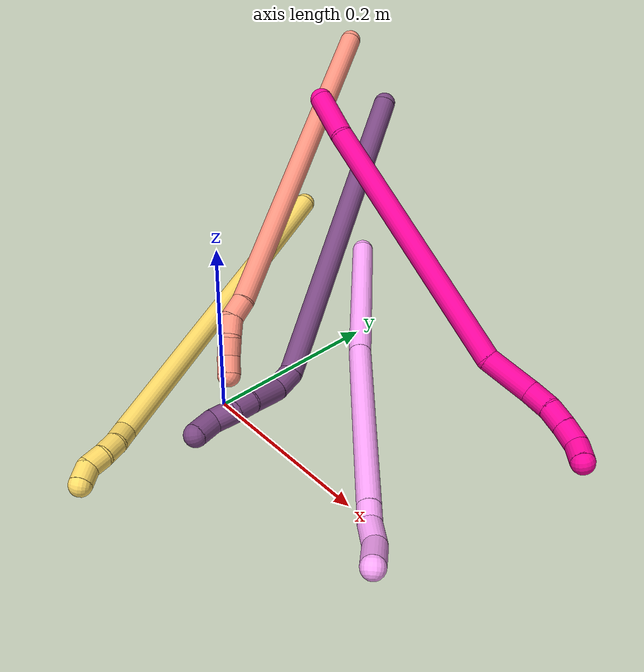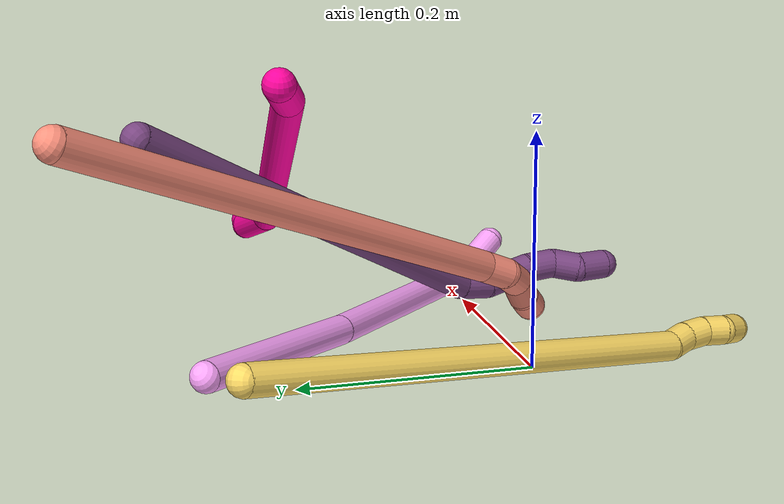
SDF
<sdf version="1.7">
 <world name="default">
  <model name="4">
   <static>0</static>
   <link name="4">
    <collision name="collision-cylinder-e_1_1_4">
     <pose>0.005216 -0.051742 -0.077474 2.55277 0.055925 0.183962</pose>
     <geometry><cylinder><radius>0.0125</radius><length>0.186618</length></cylinder></geometry>
     <surface>
      <friction><ode><mu>1.16</mu><mu2>1.16</mu2><slip1>0</slip1><slip2>0</slip2></ode></friction>
      <contact><ode><kp>1e+06</kp><kd>1</kd><max_vel>0</max_vel><min_depth>0.001</min_depth></ode></contact>
     </surface>
    </collision>
    <visual name="visual-cylinder-e_1_1_4">
     <pose>0.005216 -0.051742 -0.077474 2.55277 0.055925 0.183962</pose>
     <geometry><cylinder><radius>0.0125</radius><length>0.186618</length></cylinder></geometry>
     <material><ambient>1 0.65098 0.996078 1</ambient></material>
    </visual>
    <collision name="collision-cylinder-e_2_4_5">
     <pose>0.023002 -0.166875 -0.244556 2.52589 0.114026 0.355226</pose>
     <geometry><cylinder><radius>0.0125</radius><length>0.220964</length></cylinder></geometry>
     <surface>
      <friction><ode><mu>1.16</mu><mu2>1.16</mu2><slip1>0</slip1><slip2>0</slip2></ode></friction>
      <contact><ode><kp>1e+06</kp><kd>1</kd><max_vel>0</max_vel><min_depth>0.001</min_depth></ode></contact>
     </surface>
    </collision>
    <visual name="visual-cylinder-e_2_4_5">
     <pose>0.023002 -0.166875 -0.244556 2.52589 0.114026 0.355226</pose>
     <geometry><cylinder><radius>0.0125</radius><length>0.220964</length></cylinder></geometry>
     <material><ambient>1 0.65098 0.996078 1</ambient></material>
    </visual>
    <collision name="collision-cylinder-e_3_5_6">
     <pose>0.036766 -0.236284 -0.342882 2.53757 0.112207 0.356713</pose>
     <geometry><cylinder><radius>0.0125</radius><length>0.021318</length></cylinder></geometry>
     <surface>
      <friction><ode><mu>1.16</mu><mu2>1.16</mu2><slip1>0</slip1><slip2>0</slip2></ode></friction>
      <contact><ode><kp>1e+06</kp><kd>1</kd><max_vel>0</max_vel><min_depth>0.001</min_depth></ode></contact>
     </surface>
    </collision>
    <visual name="visual-cylinder-e_3_5_6">
     <pose>0.036766 -0.236284 -0.342882 2.53757 0.112207 0.356713</pose>
     <geometry><cylinder><radius>0.0125</radius><length>0.021318</length></cylinder></geometry>
     <material><ambient>1 0.65098 0.996078 1</ambient></material>
    </visual>
    <collision name="collision-cylinder-e_4_6_7">
     <pose>0.041237 -0.25345 -0.362059 2.32424 0.211225 0.480132</pose>
     <geometry><cylinder><radius>0.0125</radius><length>0.031271</length></cylinder></geometry>
     <surface>
      <friction><ode><mu>1.16</mu><mu2>1.16</mu2><slip1>0</slip1><slip2>0</slip2></ode></friction>
      <contact><ode><kp>1e+06</kp><kd>1</kd><max_vel>0</max_vel><min_depth>0.001</min_depth></ode></contact>
     </surface>
    </collision>
    <visual name="visual-cylinder-e_4_6_7">
     <pose>0.041237 -0.25345 -0.362059 2.32424 0.211225 0.480132</pose>
     <geometry><cylinder><radius>0.0125</radius><length>0.031271</length></cylinder></geometry>
     <material><ambient>1 0.65098 0.996078 1</ambient></material>
    </visual>
    <collision name="collision-cylinder-e_5_7_2">
     <pose>0.044659 -0.281973 -0.382252 2.08149 0.007193 0.012275</pose>
     <geometry><cylinder><radius>0.0125</radius><length>0.039829</length></cylinder></geometry>
     <surface>
      <friction><ode><mu>1.16</mu><mu2>1.16</mu2><slip1>0</slip1><slip2>0</slip2></ode></friction>
      <contact><ode><kp>1e+06</kp><kd>1</kd><max_vel>0</max_vel><min_depth>0.001</min_depth></ode></contact>
     </surface>
    </collision>
    <visual name="visual-cylinder-e_5_7_2">
     <pose>0.044659 -0.281973 -0.382252 2.08149 0.007193 0.012275</pose>
     <geometry><cylinder><radius>0.0125</radius><length>0.039829</length></cylinder></geometry>
     <material><ambient>1 0.65098 0.996078 1</ambient></material>
    </visual>
    <collision name="collision-sphere-2">
     <pose>0.044802 -0.299346 -0.391986 0 -0 0</pose>
     <geometry><sphere><radius>0.0125</radius></sphere></geometry>
     <surface>
      <friction><ode><mu>1.16</mu><mu2>1.16</mu2><slip1>0</slip1><slip2>0</slip2></ode></friction>
      <contact><ode><kp>1e+06</kp><kd>1</kd><max_vel>0</max_vel><min_depth>0.001</min_depth></ode></contact>
     </surface>
    </collision>
    <visual name="visual-sphere-2">
     <pose>0.044802 -0.299346 -0.391986 0 -0 0</pose>
     <geometry><sphere><radius>0.0125</radius></sphere></geometry>
     <material><ambient>1 0.65098 0.996078 1</ambient></material>
    </visual>
    <collision name="collision-sphere-7">
     <pose>0.044516 -0.264599 -0.372519 0 -0 0</pose>
     <geometry><sphere><radius>0.0125</radius></sphere></geometry>
     <surface>
      <friction><ode><mu>1.16</mu><mu2>1.16</mu2><slip1>0</slip1><slip2>0</slip2></ode></friction>
      <contact><ode><kp>1e+06</kp><kd>1</kd><max_vel>0</max_vel><min_depth>0.001</min_depth></ode></contact>
     </surface>
    </collision>
    <visual name="visual-sphere-7">
     <pose>0.044516 -0.264599 -0.372519 0 -0 0</pose>
     <geometry><sphere><radius>0.0125</radius></sphere></geometry>
     <material><ambient>1 0.65098 0.996078 1</ambient></material>
    </visual>
    <collision name="collision-sphere-6">
     <pose>0.037959 -0.2423 -0.3516 0 -0 0</pose>
     <geometry><sphere><radius>0.0125</radius></sphere></geometry>
     <surface>
      <friction><ode><mu>1.16</mu><mu2>1.16</mu2><slip1>0</slip1><slip2>0</slip2></ode></friction>
      <contact><ode><kp>1e+06</kp><kd>1</kd><max_vel>0</max_vel><min_depth>0.001</min_depth></ode></contact>
     </surface>
    </collision>
    <visual name="visual-sphere-6">
     <pose>0.037959 -0.2423 -0.3516 0 -0 0</pose>
     <geometry><sphere><radius>0.0125</radius></sphere></geometry>
     <material><ambient>1 0.65098 0.996078 1</ambient></material>
    </visual>
    <collision name="collision-sphere-5">
     <pose>0.035572 -0.230268 -0.334164 0 -0 0</pose>
     <geometry><sphere><radius>0.0125</radius></sphere></geometry>
     <surface>
      <friction><ode><mu>1.16</mu><mu2>1.16</mu2><slip1>0</slip1><slip2>0</slip2></ode></friction>
      <contact><ode><kp>1e+06</kp><kd>1</kd><max_vel>0</max_vel><min_depth>0.001</min_depth></ode></contact>
     </surface>
    </collision>
    <visual name="visual-sphere-5">
     <pose>0.035572 -0.230268 -0.334164 0 -0 0</pose>
     <geometry><sphere><radius>0.0125</radius></sphere></geometry>
     <material><ambient>1 0.65098 0.996078 1</ambient></material>
    </visual>
    <collision name="collision-sphere-1">
     <geometry><sphere><radius>0.0125</radius></sphere></geometry>
     <surface>
      <friction><ode><mu>1.16</mu><mu2>1.16</mu2><slip1>0</slip1><slip2>0</slip2></ode></friction>
      <contact><ode><kp>1e+06</kp><kd>1</kd><max_vel>0</max_vel><min_depth>0.001</min_depth></ode></contact>
     </surface>
    </collision>
    <visual name="visual-sphere-1">
     <geometry><sphere><radius>0.0125</radius></sphere></geometry>
     <material><ambient>1 0.65098 0.996078 1</ambient></material>
    </visual>
    <collision name="collision-sphere-4">
     <pose>0.010431 -0.103483 -0.154948 0 -0 0</pose>
     <geometry><sphere><radius>0.0125</radius></sphere></geometry>
     <surface>
      <friction><ode><mu>1.16</mu><mu2>1.16</mu2><slip1>0</slip1><slip2>0</slip2></ode></friction>
      <contact><ode><kp>1e+06</kp><kd>1</kd><max_vel>0</max_vel><min_depth>0.001</min_depth></ode></contact>
     </surface>
    </collision>
    <visual name="visual-sphere-4">
     <pose>0.010431 -0.103483 -0.154948 0 -0 0</pose>
     <geometry><sphere><radius>0.0125</radius></sphere></geometry>
     <material><ambient>1 0.65098 0.996078 1</ambient></material>
    </visual>
    <inertial>
     <pose>0.019816 -0.141445 -0.204705 0 -0 0</pose>
     <mass>0.5</mass>
     <inertia>
      <ixx>0.001816</ixx>
      <ixy>0</ixy>
      <ixz>0</ixz>
      <iyy>-0.000733</iyy>
      <iyz>0</iyz>
      <izz>0.000669</izz>
     </inertia>
    </inertial>
   </link>
   <pose>-0.075575 0.280285 0.045383 -0.888596 -0.017824 0.735788</pose>
  </model>
  <model name="5">
   <static>0</static>
   <link name="5">
    <collision name="collision-cylinder-e_1_1_4">
     <pose>0.147677 -0.131278 -0.06509 2.03109 0.7893 1.18254</pose>
     <geometry><cylinder><radius>0.0125</radius><length>0.416072</length></cylinder></geometry>
     <surface>
      <friction><ode><mu>1.16</mu><mu2>1.16</mu2><slip1>0</slip1><slip2>0</slip2></ode></friction>
      <contact><ode><kp>1e+06</kp><kd>1</kd><max_vel>0</max_vel><min_depth>0.001</min_depth></ode></contact>
     </surface>
    </collision>
    <visual name="visual-cylinder-e_1_1_4">
     <pose>0.147677 -0.131278 -0.06509 2.03109 0.7893 1.18254</pose>
     <geometry><cylinder><radius>0.0125</radius><length>0.416072</length></cylinder></geometry>
     <material><ambient>1 0.858824 0.4 1</ambient></material>
    </visual>
    <collision name="collision-cylinder-e_2_4_5">
     <pose>0.300762 -0.271548 -0.131965 1.76677 0.533029 0.642064</pose>
     <geometry><cylinder><radius>0.0125</radius><length>0.021288</length></cylinder></geometry>
     <surface>
      <friction><ode><mu>1.16</mu><mu2>1.16</mu2><slip1>0</slip1><slip2>0</slip2></ode></friction>
      <contact><ode><kp>1e+06</kp><kd>1</kd><max_vel>0</max_vel><min_depth>0.001</min_depth></ode></contact>
     </surface>
    </collision>
    <visual name="visual-cylinder-e_2_4_5">
     <pose>0.300762 -0.271548 -0.131965 1.76677 0.533029 0.642064</pose>
     <geometry><cylinder><radius>0.0125</radius><length>0.021288</length></cylinder></geometry>
     <material><ambient>1 0.858824 0.4 1</ambient></material>
    </visual>
    <collision name="collision-cylinder-e_3_5_6">
     <pose>0.312286 -0.288538 -0.137534 2.01273 0.604765 0.915585</pose>
     <geometry><cylinder><radius>0.0125</radius><length>0.021512</length></cylinder></geometry>
     <surface>
      <friction><ode><mu>1.16</mu><mu2>1.16</mu2><slip1>0</slip1><slip2>0</slip2></ode></friction>
      <contact><ode><kp>1e+06</kp><kd>1</kd><max_vel>0</max_vel><min_depth>0.001</min_depth></ode></contact>
     </surface>
    </collision>
    <visual name="visual-cylinder-e_3_5_6">
     <pose>0.312286 -0.288538 -0.137534 2.01273 0.604765 0.915585</pose>
     <geometry><cylinder><radius>0.0125</radius><length>0.021512</length></cylinder></geometry>
     <material><ambient>1 0.858824 0.4 1</ambient></material>
    </visual>
    <collision name="collision-cylinder-e_4_6_7">
     <pose>0.324845 -0.302442 -0.146715 2.31112 0.678011 1.34926</pose>
     <geometry><cylinder><radius>0.0125</radius><length>0.020546</length></cylinder></geometry>
     <surface>
      <friction><ode><mu>1.16</mu><mu2>1.16</mu2><slip1>0</slip1><slip2>0</slip2></ode></friction>
      <contact><ode><kp>1e+06</kp><kd>1</kd><max_vel>0</max_vel><min_depth>0.001</min_depth></ode></contact>
     </surface>
    </collision>
    <visual name="visual-cylinder-e_4_6_7">
     <pose>0.324845 -0.302442 -0.146715 2.31112 0.678011 1.34926</pose>
     <geometry><cylinder><radius>0.0125</radius><length>0.020546</length></cylinder></geometry>
     <material><ambient>1 0.858824 0.4 1</ambient></material>
    </visual>
    <collision name="collision-cylinder-e_5_7_2">
     <pose>0.338944 -0.315197 -0.152754 1.66421 0.838882 0.910636</pose>
     <geometry><cylinder><radius>0.0125</radius><length>0.020583</length></cylinder></geometry>
     <surface>
      <friction><ode><mu>1.16</mu><mu2>1.16</mu2><slip1>0</slip1><slip2>0</slip2></ode></friction>
      <contact><ode><kp>1e+06</kp><kd>1</kd><max_vel>0</max_vel><min_depth>0.001</min_depth></ode></contact>
     </surface>
    </collision>
    <visual name="visual-cylinder-e_5_7_2">
     <pose>0.338944 -0.315197 -0.152754 1.66421 0.838882 0.910636</pose>
     <geometry><cylinder><radius>0.0125</radius><length>0.020583</length></cylinder></geometry>
     <material><ambient>1 0.858824 0.4 1</ambient></material>
    </visual>
    <collision name="collision-sphere-2">
     <pose>0.3466 -0.322044 -0.153395 0 -0 0</pose>
     <geometry><sphere><radius>0.0125</radius></sphere></geometry>
     <surface>
      <friction><ode><mu>1.16</mu><mu2>1.16</mu2><slip1>0</slip1><slip2>0</slip2></ode></friction>
      <contact><ode><kp>1e+06</kp><kd>1</kd><max_vel>0</max_vel><min_depth>0.001</min_depth></ode></contact>
     </surface>
    </collision>
    <visual name="visual-sphere-2">
     <pose>0.3466 -0.322044 -0.153395 0 -0 0</pose>
     <geometry><sphere><radius>0.0125</radius></sphere></geometry>
     <material><ambient>1 0.858824 0.4 1</ambient></material>
    </visual>
    <collision name="collision-sphere-7">
     <pose>0.331288 -0.308349 -0.152112 0 -0 0</pose>
     <geometry><sphere><radius>0.0125</radius></sphere></geometry>
     <surface>
      <friction><ode><mu>1.16</mu><mu2>1.16</mu2><slip1>0</slip1><slip2>0</slip2></ode></friction>
      <contact><ode><kp>1e+06</kp><kd>1</kd><max_vel>0</max_vel><min_depth>0.001</min_depth></ode></contact>
     </surface>
    </collision>
    <visual name="visual-sphere-7">
     <pose>0.331288 -0.308349 -0.152112 0 -0 0</pose>
     <geometry><sphere><radius>0.0125</radius></sphere></geometry>
     <material><ambient>1 0.858824 0.4 1</ambient></material>
    </visual>
    <collision name="collision-sphere-6">
     <pose>0.318401 -0.296536 -0.141319 0 -0 0</pose>
     <geometry><sphere><radius>0.0125</radius></sphere></geometry>
     <surface>
      <friction><ode><mu>1.16</mu><mu2>1.16</mu2><slip1>0</slip1><slip2>0</slip2></ode></friction>
      <contact><ode><kp>1e+06</kp><kd>1</kd><max_vel>0</max_vel><min_depth>0.001</min_depth></ode></contact>
     </surface>
    </collision>
    <visual name="visual-sphere-6">
     <pose>0.318401 -0.296536 -0.141319 0 -0 0</pose>
     <geometry><sphere><radius>0.0125</radius></sphere></geometry>
     <material><ambient>1 0.858824 0.4 1</ambient></material>
    </visual>
    <collision name="collision-sphere-5">
     <pose>0.30617 -0.280539 -0.13375 0 -0 0</pose>
     <geometry><sphere><radius>0.0125</radius></sphere></geometry>
     <surface>
      <friction><ode><mu>1.16</mu><mu2>1.16</mu2><slip1>0</slip1><slip2>0</slip2></ode></friction>
      <contact><ode><kp>1e+06</kp><kd>1</kd><max_vel>0</max_vel><min_depth>0.001</min_depth></ode></contact>
     </surface>
    </collision>
    <visual name="visual-sphere-5">
     <pose>0.30617 -0.280539 -0.13375 0 -0 0</pose>
     <geometry><sphere><radius>0.0125</radius></sphere></geometry>
     <material><ambient>1 0.858824 0.4 1</ambient></material>
    </visual>
    <collision name="collision-sphere-1">
     <geometry><sphere><radius>0.0125</radius></sphere></geometry>
     <surface>
      <friction><ode><mu>1.16</mu><mu2>1.16</mu2><slip1>0</slip1><slip2>0</slip2></ode></friction>
      <contact><ode><kp>1e+06</kp><kd>1</kd><max_vel>0</max_vel><min_depth>0.001</min_depth></ode></contact>
     </surface>
    </collision>
    <visual name="visual-sphere-1">
     <geometry><sphere><radius>0.0125</radius></sphere></geometry>
     <material><ambient>1 0.858824 0.4 1</ambient></material>
    </visual>
    <collision name="collision-sphere-4">
     <pose>0.295353 -0.262556 -0.13018 0 -0 0</pose>
     <geometry><sphere><radius>0.0125</radius></sphere></geometry>
     <surface>
      <friction><ode><mu>1.16</mu><mu2>1.16</mu2><slip1>0</slip1><slip2>0</slip2></ode></friction>
      <contact><ode><kp>1e+06</kp><kd>1</kd><max_vel>0</max_vel><min_depth>0.001</min_depth></ode></contact>
     </surface>
    </collision>
    <visual name="visual-sphere-4">
     <pose>0.295353 -0.262556 -0.13018 0 -0 0</pose>
     <geometry><sphere><radius>0.0125</radius></sphere></geometry>
     <material><ambient>1 0.858824 0.4 1</ambient></material>
    </visual>
    <inertial>
     <pose>0.17643 -0.15862 -0.078017 0 -0 0</pose>
     <mass>0.5</mass>
     <inertia>
      <ixx>0.005562</ixx>
      <ixy>0</ixy>
      <ixz>0</ixz>
      <iyy>0.006435</iyy>
      <iyz>0</iyz>
      <izz>-0.000486</izz>
     </inertia>
    </inertial>
   </link>
   <pose>-0.172406 0.267454 0.075313 -1.77916 0.913 -1.01131</pose>
  </model>
  <model name="16">
   <static>0</static>
   <link name="16">
    <collision name="collision-cylinder-e_1_1_4">
     <pose>0.038839 0.016047 -0.202164 -3.06238 0.189223 -2.35048</pose>
     <geometry><cylinder><radius>0.0125</radius><length>0.412972</length></cylinder></geometry>
     <surface>
      <friction><ode><mu>1.16</mu><mu2>1.16</mu2><slip1>0</slip1><slip2>0</slip2></ode></friction>
      <contact><ode><kp>1e+06</kp><kd>1</kd><max_vel>0</max_vel><min_depth>0.001</min_depth></ode></contact>
     </surface>
    </collision>
    <visual name="visual-cylinder-e_1_1_4">
     <pose>0.038839 0.016047 -0.202164 -3.06238 0.189223 -2.35048</pose>
     <geometry><cylinder><radius>0.0125</radius><length>0.412972</length></cylinder></geometry>
     <material><ambient>1 0.576471 0.494118 1</ambient></material>
    </visual>
    <collision name="collision-cylinder-e_2_4_5">
     <pose>0.079449 0.030681 -0.416182 3.02302 0.147257 1.78636</pose>
     <geometry><cylinder><radius>0.0125</radius><length>0.024135</length></cylinder></geometry>
     <surface>
      <friction><ode><mu>1.16</mu><mu2>1.16</mu2><slip1>0</slip1><slip2>0</slip2></ode></friction>
      <contact><ode><kp>1e+06</kp><kd>1</kd><max_vel>0</max_vel><min_depth>0.001</min_depth></ode></contact>
     </surface>
    </collision>
    <visual name="visual-cylinder-e_2_4_5">
     <pose>0.079449 0.030681 -0.416182 3.02302 0.147257 1.78636</pose>
     <geometry><cylinder><radius>0.0125</radius><length>0.024135</length></cylinder></geometry>
     <material><ambient>1 0.576471 0.494118 1</ambient></material>
    </visual>
    <collision name="collision-cylinder-e_3_5_6">
     <pose>0.081483 0.032639 -0.438546 -2.83127 0.023878 -0.152362</pose>
     <geometry><cylinder><radius>0.0125</radius><length>0.022081</length></cylinder></geometry>
     <surface>
      <friction><ode><mu>1.16</mu><mu2>1.16</mu2><slip1>0</slip1><slip2>0</slip2></ode></friction>
      <contact><ode><kp>1e+06</kp><kd>1</kd><max_vel>0</max_vel><min_depth>0.001</min_depth></ode></contact>
     </surface>
    </collision>
    <visual name="visual-cylinder-e_3_5_6">
     <pose>0.081483 0.032639 -0.438546 -2.83127 0.023878 -0.152362</pose>
     <geometry><cylinder><radius>0.0125</radius><length>0.022081</length></cylinder></geometry>
     <material><ambient>1 0.576471 0.494118 1</ambient></material>
    </visual>
    <collision name="collision-cylinder-e_4_6_7">
     <pose>0.078471 0.038586 -0.458412 -2.87293 -0.325524 1.76441</pose>
     <geometry><cylinder><radius>0.0125</radius><length>0.020485</length></cylinder></geometry>
     <surface>
      <friction><ode><mu>1.16</mu><mu2>1.16</mu2><slip1>0</slip1><slip2>0</slip2></ode></friction>
      <contact><ode><kp>1e+06</kp><kd>1</kd><max_vel>0</max_vel><min_depth>0.001</min_depth></ode></contact>
     </surface>
    </collision>
    <visual name="visual-cylinder-e_4_6_7">
     <pose>0.078471 0.038586 -0.458412 -2.87293 -0.325524 1.76441</pose>
     <geometry><cylinder><radius>0.0125</radius><length>0.020485</length></cylinder></geometry>
     <material><ambient>1 0.576471 0.494118 1</ambient></material>
    </visual>
    <collision name="collision-cylinder-e_5_7_2">
     <pose>0.07432 0.045033 -0.477125 -2.74931 -0.086257 0.427744</pose>
     <geometry><cylinder><radius>0.0125</radius><length>0.020327</length></cylinder></geometry>
     <surface>
      <friction><ode><mu>1.16</mu><mu2>1.16</mu2><slip1>0</slip1><slip2>0</slip2></ode></friction>
      <contact><ode><kp>1e+06</kp><kd>1</kd><max_vel>0</max_vel><min_depth>0.001</min_depth></ode></contact>
     </surface>
    </collision>
    <visual name="visual-cylinder-e_5_7_2">
     <pose>0.07432 0.045033 -0.477125 -2.74931 -0.086257 0.427744</pose>
     <geometry><cylinder><radius>0.0125</radius><length>0.020327</length></cylinder></geometry>
     <material><ambient>1 0.576471 0.494118 1</ambient></material>
    </visual>
    <collision name="collision-sphere-2">
     <pose>0.073444 0.048904 -0.486482 0 -0 0</pose>
     <geometry><sphere><radius>0.0125</radius></sphere></geometry>
     <surface>
      <friction><ode><mu>1.16</mu><mu2>1.16</mu2><slip1>0</slip1><slip2>0</slip2></ode></friction>
      <contact><ode><kp>1e+06</kp><kd>1</kd><max_vel>0</max_vel><min_depth>0.001</min_depth></ode></contact>
     </surface>
    </collision>
    <visual name="visual-sphere-2">
     <pose>0.073444 0.048904 -0.486482 0 -0 0</pose>
     <geometry><sphere><radius>0.0125</radius></sphere></geometry>
     <material><ambient>1 0.576471 0.494118 1</ambient></material>
    </visual>
    <collision name="collision-sphere-7">
     <pose>0.075196 0.041162 -0.467768 0 -0 0</pose>
     <geometry><sphere><radius>0.0125</radius></sphere></geometry>
     <surface>
      <friction><ode><mu>1.16</mu><mu2>1.16</mu2><slip1>0</slip1><slip2>0</slip2></ode></friction>
      <contact><ode><kp>1e+06</kp><kd>1</kd><max_vel>0</max_vel><min_depth>0.001</min_depth></ode></contact>
     </surface>
    </collision>
    <visual name="visual-sphere-7">
     <pose>0.075196 0.041162 -0.467768 0 -0 0</pose>
     <geometry><sphere><radius>0.0125</radius></sphere></geometry>
     <material><ambient>1 0.576471 0.494118 1</ambient></material>
    </visual>
    <collision name="collision-sphere-6">
     <pose>0.081747 0.03601 -0.449056 0 -0 0</pose>
     <geometry><sphere><radius>0.0125</radius></sphere></geometry>
     <surface>
      <friction><ode><mu>1.16</mu><mu2>1.16</mu2><slip1>0</slip1><slip2>0</slip2></ode></friction>
      <contact><ode><kp>1e+06</kp><kd>1</kd><max_vel>0</max_vel><min_depth>0.001</min_depth></ode></contact>
     </surface>
    </collision>
    <visual name="visual-sphere-6">
     <pose>0.081747 0.03601 -0.449056 0 -0 0</pose>
     <geometry><sphere><radius>0.0125</radius></sphere></geometry>
     <material><ambient>1 0.576471 0.494118 1</ambient></material>
    </visual>
    <collision name="collision-sphere-5">
     <pose>0.08122 0.029269 -0.428035 0 -0 0</pose>
     <geometry><sphere><radius>0.0125</radius></sphere></geometry>
     <surface>
      <friction><ode><mu>1.16</mu><mu2>1.16</mu2><slip1>0</slip1><slip2>0</slip2></ode></friction>
      <contact><ode><kp>1e+06</kp><kd>1</kd><max_vel>0</max_vel><min_depth>0.001</min_depth></ode></contact>
     </surface>
    </collision>
    <visual name="visual-sphere-5">
     <pose>0.08122 0.029269 -0.428035 0 -0 0</pose>
     <geometry><sphere><radius>0.0125</radius></sphere></geometry>
     <material><ambient>1 0.576471 0.494118 1</ambient></material>
    </visual>
    <collision name="collision-sphere-1">
     <geometry><sphere><radius>0.0125</radius></sphere></geometry>
     <surface>
      <friction><ode><mu>1.16</mu><mu2>1.16</mu2><slip1>0</slip1><slip2>0</slip2></ode></friction>
      <contact><ode><kp>1e+06</kp><kd>1</kd><max_vel>0</max_vel><min_depth>0.001</min_depth></ode></contact>
     </surface>
    </collision>
    <visual name="visual-sphere-1">
     <geometry><sphere><radius>0.0125</radius></sphere></geometry>
     <material><ambient>1 0.576471 0.494118 1</ambient></material>
    </visual>
    <collision name="collision-sphere-4">
     <pose>0.077678 0.032093 -0.404329 0 -0 0</pose>
     <geometry><sphere><radius>0.0125</radius></sphere></geometry>
     <surface>
      <friction><ode><mu>1.16</mu><mu2>1.16</mu2><slip1>0</slip1><slip2>0</slip2></ode></friction>
      <contact><ode><kp>1e+06</kp><kd>1</kd><max_vel>0</max_vel><min_depth>0.001</min_depth></ode></contact>
     </surface>
    </collision>
    <visual name="visual-sphere-4">
     <pose>0.077678 0.032093 -0.404329 0 -0 0</pose>
     <geometry><sphere><radius>0.0125</radius></sphere></geometry>
     <material><ambient>1 0.576471 0.494118 1</ambient></material>
    </visual>
    <inertial>
     <pose>0.045749 0.019588 -0.244611 0 -0 0</pose>
     <mass>0.5</mass>
     <inertia>
      <ixx>-0.008163</ixx>
      <ixy>0</ixy>
      <ixz>0</ixz>
      <iyy>8.2e-05</iyy>
      <iyz>0</iyz>
      <izz>-0.001603</izz>
     </inertia>
    </inertial>
   </link>
   <pose>-0.217714 0.384976 0.253043 -0.147253 -0.998585 -0.979951</pose>
  </model>
  <model name="18">
   <static>0</static>
   <link name="18">
    <collision name="collision-cylinder-e_1_1_4">
     <pose>0.019408 -0.008872 -0.018729 2.6992 0.752615 2.10681</pose>
     <geometry><cylinder><radius>0.0125</radius><length>0.056786</length></cylinder></geometry>
     <surface>
      <friction><ode><mu>1.16</mu><mu2>1.16</mu2><slip1>0</slip1><slip2>0</slip2></ode></friction>
      <contact><ode><kp>1e+06</kp><kd>1</kd><max_vel>0</max_vel><min_depth>0.001</min_depth></ode></contact>
     </surface>
    </collision>
    <visual name="visual-cylinder-e_1_1_4">
     <pose>0.019408 -0.008872 -0.018729 2.6992 0.752615 2.10681</pose>
     <geometry><cylinder><radius>0.0125</radius><length>0.056786</length></cylinder></geometry>
     <material><ambient>1 0.007843 0.615686 1</ambient></material>
    </visual>
    <collision name="collision-cylinder-e_2_4_5">
     <pose>0.128574 -0.03405 -0.152755 3.0011 0.656691 2.73425</pose>
     <geometry><cylinder><radius>0.0125</radius><length>0.294046</length></cylinder></geometry>
     <surface>
      <friction><ode><mu>1.16</mu><mu2>1.16</mu2><slip1>0</slip1><slip2>0</slip2></ode></friction>
      <contact><ode><kp>1e+06</kp><kd>1</kd><max_vel>0</max_vel><min_depth>0.001</min_depth></ode></contact>
     </surface>
    </collision>
    <visual name="visual-cylinder-e_2_4_5">
     <pose>0.128574 -0.03405 -0.152755 3.0011 0.656691 2.73425</pose>
     <geometry><cylinder><radius>0.0125</radius><length>0.294046</length></cylinder></geometry>
     <material><ambient>1 0.007843 0.615686 1</ambient></material>
    </visual>
    <collision name="collision-cylinder-e_3_5_6">
     <pose>0.238133 -0.045871 -0.285184 -2.88556 0.841129 -2.58114</pose>
     <geometry><cylinder><radius>0.0125</radius><length>0.05313</length></cylinder></geometry>
     <surface>
      <friction><ode><mu>1.16</mu><mu2>1.16</mu2><slip1>0</slip1><slip2>0</slip2></ode></friction>
      <contact><ode><kp>1e+06</kp><kd>1</kd><max_vel>0</max_vel><min_depth>0.001</min_depth></ode></contact>
     </surface>
    </collision>
    <visual name="visual-cylinder-e_3_5_6">
     <pose>0.238133 -0.045871 -0.285184 -2.88556 0.841129 -2.58114</pose>
     <geometry><cylinder><radius>0.0125</radius><length>0.05313</length></cylinder></geometry>
     <material><ambient>1 0.007843 0.615686 1</ambient></material>
    </visual>
    <collision name="collision-cylinder-e_4_6_7">
     <pose>0.270356 -0.044061 -0.308036 2.70422 1.10049 2.44643</pose>
     <geometry><cylinder><radius>0.0125</radius><length>0.027869</length></cylinder></geometry>
     <surface>
      <friction><ode><mu>1.16</mu><mu2>1.16</mu2><slip1>0</slip1><slip2>0</slip2></ode></friction>
      <contact><ode><kp>1e+06</kp><kd>1</kd><max_vel>0</max_vel><min_depth>0.001</min_depth></ode></contact>
     </surface>
    </collision>
    <visual name="visual-cylinder-e_4_6_7">
     <pose>0.270356 -0.044061 -0.308036 2.70422 1.10049 2.44643</pose>
     <geometry><cylinder><radius>0.0125</radius><length>0.027869</length></cylinder></geometry>
     <material><ambient>1 0.007843 0.615686 1</ambient></material>
    </visual>
    <collision name="collision-cylinder-e_5_7_8">
     <pose>0.292079 -0.049966 -0.320277 2.68159 0.906874 2.24575</pose>
     <geometry><cylinder><radius>0.0125</radius><length>0.023619</length></cylinder></geometry>
     <surface>
      <friction><ode><mu>1.16</mu><mu2>1.16</mu2><slip1>0</slip1><slip2>0</slip2></ode></friction>
      <contact><ode><kp>1e+06</kp><kd>1</kd><max_vel>0</max_vel><min_depth>0.001</min_depth></ode></contact>
     </surface>
    </collision>
    <visual name="visual-cylinder-e_5_7_8">
     <pose>0.292079 -0.049966 -0.320277 2.68159 0.906874 2.24575</pose>
     <geometry><cylinder><radius>0.0125</radius><length>0.023619</length></cylinder></geometry>
     <material><ambient>1 0.007843 0.615686 1</ambient></material>
    </visual>
    <collision name="collision-cylinder-e_6_8_9">
     <pose>0.31 -0.056982 -0.333404 2.62127 0.847339 2.07515</pose>
     <geometry><cylinder><radius>0.0125</radius><length>0.023003</length></cylinder></geometry>
     <surface>
      <friction><ode><mu>1.16</mu><mu2>1.16</mu2><slip1>0</slip1><slip2>0</slip2></ode></friction>
      <contact><ode><kp>1e+06</kp><kd>1</kd><max_vel>0</max_vel><min_depth>0.001</min_depth></ode></contact>
     </surface>
    </collision>
    <visual name="visual-cylinder-e_6_8_9">
     <pose>0.31 -0.056982 -0.333404 2.62127 0.847339 2.07515</pose>
     <geometry><cylinder><radius>0.0125</radius><length>0.023003</length></cylinder></geometry>
     <material><ambient>1 0.007843 0.615686 1</ambient></material>
    </visual>
    <collision name="collision-cylinder-e_7_9_2">
     <pose>0.32571 -0.067835 -0.343992 2.08388 0.718226 1.14199</pose>
     <geometry><cylinder><radius>0.0125</radius><length>0.021546</length></cylinder></geometry>
     <surface>
      <friction><ode><mu>1.16</mu><mu2>1.16</mu2><slip1>0</slip1><slip2>0</slip2></ode></friction>
      <contact><ode><kp>1e+06</kp><kd>1</kd><max_vel>0</max_vel><min_depth>0.001</min_depth></ode></contact>
     </surface>
    </collision>
    <visual name="visual-cylinder-e_7_9_2">
     <pose>0.32571 -0.067835 -0.343992 2.08388 0.718226 1.14199</pose>
     <geometry><cylinder><radius>0.0125</radius><length>0.021546</length></cylinder></geometry>
     <material><ambient>1 0.007843 0.615686 1</ambient></material>
    </visual>
    <collision name="collision-sphere-2">
     <pose>0.332799 -0.074902 -0.347974 0 -0 0</pose>
     <geometry><sphere><radius>0.0125</radius></sphere></geometry>
     <surface>
      <friction><ode><mu>1.16</mu><mu2>1.16</mu2><slip1>0</slip1><slip2>0</slip2></ode></friction>
      <contact><ode><kp>1e+06</kp><kd>1</kd><max_vel>0</max_vel><min_depth>0.001</min_depth></ode></contact>
     </surface>
    </collision>
    <visual name="visual-sphere-2">
     <pose>0.332799 -0.074902 -0.347974 0 -0 0</pose>
     <geometry><sphere><radius>0.0125</radius></sphere></geometry>
     <material><ambient>1 0.007843 0.615686 1</ambient></material>
    </visual>
    <collision name="collision-sphere-9">
     <pose>0.318621 -0.060768 -0.34001 0 -0 0</pose>
     <geometry><sphere><radius>0.0125</radius></sphere></geometry>
     <surface>
      <friction><ode><mu>1.16</mu><mu2>1.16</mu2><slip1>0</slip1><slip2>0</slip2></ode></friction>
      <contact><ode><kp>1e+06</kp><kd>1</kd><max_vel>0</max_vel><min_depth>0.001</min_depth></ode></contact>
     </surface>
    </collision>
    <visual name="visual-sphere-9">
     <pose>0.318621 -0.060768 -0.34001 0 -0 0</pose>
     <geometry><sphere><radius>0.0125</radius></sphere></geometry>
     <material><ambient>1 0.007843 0.615686 1</ambient></material>
    </visual>
    <collision name="collision-sphere-4">
     <pose>0.038816 -0.017744 -0.037458 0 -0 0</pose>
     <geometry><sphere><radius>0.0125</radius></sphere></geometry>
     <surface>
      <friction><ode><mu>1.16</mu><mu2>1.16</mu2><slip1>0</slip1><slip2>0</slip2></ode></friction>
      <contact><ode><kp>1e+06</kp><kd>1</kd><max_vel>0</max_vel><min_depth>0.001</min_depth></ode></contact>
     </surface>
    </collision>
    <visual name="visual-sphere-4">
     <pose>0.038816 -0.017744 -0.037458 0 -0 0</pose>
     <geometry><sphere><radius>0.0125</radius></sphere></geometry>
     <material><ambient>1 0.007843 0.615686 1</ambient></material>
    </visual>
    <collision name="collision-sphere-1">
     <geometry><sphere><radius>0.0125</radius></sphere></geometry>
     <surface>
      <friction><ode><mu>1.16</mu><mu2>1.16</mu2><slip1>0</slip1><slip2>0</slip2></ode></friction>
      <contact><ode><kp>1e+06</kp><kd>1</kd><max_vel>0</max_vel><min_depth>0.001</min_depth></ode></contact>
     </surface>
    </collision>
    <visual name="visual-sphere-1">
     <geometry><sphere><radius>0.0125</radius></sphere></geometry>
     <material><ambient>1 0.007843 0.615686 1</ambient></material>
    </visual>
    <collision name="collision-sphere-8">
     <pose>0.30138 -0.053197 -0.326798 0 -0 0</pose>
     <geometry><sphere><radius>0.0125</radius></sphere></geometry>
     <surface>
      <friction><ode><mu>1.16</mu><mu2>1.16</mu2><slip1>0</slip1><slip2>0</slip2></ode></friction>
      <contact><ode><kp>1e+06</kp><kd>1</kd><max_vel>0</max_vel><min_depth>0.001</min_depth></ode></contact>
     </surface>
    </collision>
    <visual name="visual-sphere-8">
     <pose>0.30138 -0.053197 -0.326798 0 -0 0</pose>
     <geometry><sphere><radius>0.0125</radius></sphere></geometry>
     <material><ambient>1 0.007843 0.615686 1</ambient></material>
    </visual>
    <collision name="collision-sphere-5">
     <pose>0.218331 -0.050356 -0.268053 0 -0 0</pose>
     <geometry><sphere><radius>0.0125</radius></sphere></geometry>
     <surface>
      <friction><ode><mu>1.16</mu><mu2>1.16</mu2><slip1>0</slip1><slip2>0</slip2></ode></friction>
      <contact><ode><kp>1e+06</kp><kd>1</kd><max_vel>0</max_vel><min_depth>0.001</min_depth></ode></contact>
     </surface>
    </collision>
    <visual name="visual-sphere-5">
     <pose>0.218331 -0.050356 -0.268053 0 -0 0</pose>
     <geometry><sphere><radius>0.0125</radius></sphere></geometry>
     <material><ambient>1 0.007843 0.615686 1</ambient></material>
    </visual>
    <collision name="collision-sphere-6">
     <pose>0.257934 -0.041386 -0.302316 0 -0 0</pose>
     <geometry><sphere><radius>0.0125</radius></sphere></geometry>
     <surface>
      <friction><ode><mu>1.16</mu><mu2>1.16</mu2><slip1>0</slip1><slip2>0</slip2></ode></friction>
      <contact><ode><kp>1e+06</kp><kd>1</kd><max_vel>0</max_vel><min_depth>0.001</min_depth></ode></contact>
     </surface>
    </collision>
    <visual name="visual-sphere-6">
     <pose>0.257934 -0.041386 -0.302316 0 -0 0</pose>
     <geometry><sphere><radius>0.0125</radius></sphere></geometry>
     <material><ambient>1 0.007843 0.615686 1</ambient></material>
    </visual>
    <collision name="collision-sphere-7">
     <pose>0.282778 -0.046736 -0.313757 0 -0 0</pose>
     <geometry><sphere><radius>0.0125</radius></sphere></geometry>
     <surface>
      <friction><ode><mu>1.16</mu><mu2>1.16</mu2><slip1>0</slip1><slip2>0</slip2></ode></friction>
      <contact><ode><kp>1e+06</kp><kd>1</kd><max_vel>0</max_vel><min_depth>0.001</min_depth></ode></contact>
     </surface>
    </collision>
    <visual name="visual-sphere-7">
     <pose>0.282778 -0.046736 -0.313757 0 -0 0</pose>
     <geometry><sphere><radius>0.0125</radius></sphere></geometry>
     <material><ambient>1 0.007843 0.615686 1</ambient></material>
    </visual>
    <inertial>
     <pose>0.160285 -0.036267 -0.184726 0 -0 0</pose>
     <mass>0.5</mass>
     <inertia>
      <ixx>-0.000861</ixx>
      <ixy>0</ixy>
      <ixz>0</ixz>
      <iyy>0.002713</iyy>
      <iyz>0</iyz>
      <izz>-0.001115</izz>
     </inertia>
    </inertial>
   </link>
   <pose>-0.09501 0.22456 0.262222 -0.07109 -0.357399 0.096713</pose>
  </model>
  <model name="20">
   <static>0</static>
   <link name="20">
    <collision name="collision-cylinder-e_1_1_4">
     <pose>0.040509 -0.17175 0.038615 1.34964 0.226177 0.181248</pose>
     <geometry><cylinder><radius>0.0125</radius><length>0.361277</length></cylinder></geometry>
     <surface>
      <friction><ode><mu>1.16</mu><mu2>1.16</mu2><slip1>0</slip1><slip2>0</slip2></ode></friction>
      <contact><ode><kp>1e+06</kp><kd>1</kd><max_vel>0</max_vel><min_depth>0.001</min_depth></ode></contact>
     </surface>
    </collision>
    <visual name="visual-cylinder-e_1_1_4">
     <pose>0.040509 -0.17175 0.038615 1.34964 0.226177 0.181248</pose>
     <geometry><cylinder><radius>0.0125</radius><length>0.361277</length></cylinder></geometry>
     <material><ambient>0.478431 0.278431 0.509804 1</ambient></material>
    </visual>
    <collision name="collision-cylinder-e_2_4_5">
     <pose>0.08893 -0.353318 0.081596 1.15243 0.634754 0.420564</pose>
     <geometry><cylinder><radius>0.0125</radius><length>0.026687</length></cylinder></geometry>
     <surface>
      <friction><ode><mu>1.16</mu><mu2>1.16</mu2><slip1>0</slip1><slip2>0</slip2></ode></friction>
      <contact><ode><kp>1e+06</kp><kd>1</kd><max_vel>0</max_vel><min_depth>0.001</min_depth></ode></contact>
     </surface>
    </collision>
    <visual name="visual-cylinder-e_2_4_5">
     <pose>0.08893 -0.353318 0.081596 1.15243 0.634754 0.420564</pose>
     <geometry><cylinder><radius>0.0125</radius><length>0.026687</length></cylinder></geometry>
     <material><ambient>0.478431 0.278431 0.509804 1</ambient></material>
    </visual>
    <collision name="collision-cylinder-e_3_5_6">
     <pose>0.113711 -0.37299 0.091445 1.06293 0.9815 0.608754</pose>
     <geometry><cylinder><radius>0.0125</radius><length>0.040581</length></cylinder></geometry>
     <surface>
      <friction><ode><mu>1.16</mu><mu2>1.16</mu2><slip1>0</slip1><slip2>0</slip2></ode></friction>
      <contact><ode><kp>1e+06</kp><kd>1</kd><max_vel>0</max_vel><min_depth>0.001</min_depth></ode></contact>
     </surface>
    </collision>
    <visual name="visual-cylinder-e_3_5_6">
     <pose>0.113711 -0.37299 0.091445 1.06293 0.9815 0.608754</pose>
     <geometry><cylinder><radius>0.0125</radius><length>0.040581</length></cylinder></geometry>
     <material><ambient>0.478431 0.278431 0.509804 1</ambient></material>
    </visual>
    <collision name="collision-cylinder-e_4_6_7">
     <pose>0.139245 -0.389139 0.101559 0.936742 0.837034 0.442686</pose>
     <geometry><cylinder><radius>0.0125</radius><length>0.023339</length></cylinder></geometry>
     <surface>
      <friction><ode><mu>1.16</mu><mu2>1.16</mu2><slip1>0</slip1><slip2>0</slip2></ode></friction>
      <contact><ode><kp>1e+06</kp><kd>1</kd><max_vel>0</max_vel><min_depth>0.001</min_depth></ode></contact>
     </surface>
    </collision>
    <visual name="visual-cylinder-e_4_6_7">
     <pose>0.139245 -0.389139 0.101559 0.936742 0.837034 0.442686</pose>
     <geometry><cylinder><radius>0.0125</radius><length>0.023339</length></cylinder></geometry>
     <material><ambient>0.478431 0.278431 0.509804 1</ambient></material>
    </visual>
    <collision name="collision-cylinder-e_5_7_8">
     <pose>0.153365 -0.400749 0.114587 0.564147 0.50188 0.148304</pose>
     <geometry><cylinder><radius>0.0125</radius><length>0.022674</length></cylinder></geometry>
     <surface>
      <friction><ode><mu>1.16</mu><mu2>1.16</mu2><slip1>0</slip1><slip2>0</slip2></ode></friction>
      <contact><ode><kp>1e+06</kp><kd>1</kd><max_vel>0</max_vel><min_depth>0.001</min_depth></ode></contact>
     </surface>
    </collision>
    <visual name="visual-cylinder-e_5_7_8">
     <pose>0.153365 -0.400749 0.114587 0.564147 0.50188 0.148304</pose>
     <geometry><cylinder><radius>0.0125</radius><length>0.022674</length></cylinder></geometry>
     <material><ambient>0.478431 0.278431 0.509804 1</ambient></material>
    </visual>
    <collision name="collision-cylinder-e_6_8_2">
     <pose>0.167498 -0.414326 0.127257 1.09373 0.750758 0.470911</pose>
     <geometry><cylinder><radius>0.0125</radius><length>0.025443</length></cylinder></geometry>
     <surface>
      <friction><ode><mu>1.16</mu><mu2>1.16</mu2><slip1>0</slip1><slip2>0</slip2></ode></friction>
      <contact><ode><kp>1e+06</kp><kd>1</kd><max_vel>0</max_vel><min_depth>0.001</min_depth></ode></contact>
     </surface>
    </collision>
    <visual name="visual-cylinder-e_6_8_2">
     <pose>0.167498 -0.414326 0.127257 1.09373 0.750758 0.470911</pose>
     <geometry><cylinder><radius>0.0125</radius><length>0.025443</length></cylinder></geometry>
     <material><ambient>0.478431 0.278431 0.509804 1</ambient></material>
    </visual>
    <collision name="collision-sphere-2">
     <pose>0.176176 -0.422589 0.131528 0 -0 0</pose>
     <geometry><sphere><radius>0.0125</radius></sphere></geometry>
     <surface>
      <friction><ode><mu>1.16</mu><mu2>1.16</mu2><slip1>0</slip1><slip2>0</slip2></ode></friction>
      <contact><ode><kp>1e+06</kp><kd>1</kd><max_vel>0</max_vel><min_depth>0.001</min_depth></ode></contact>
     </surface>
    </collision>
    <visual name="visual-sphere-2">
     <pose>0.176176 -0.422589 0.131528 0 -0 0</pose>
     <geometry><sphere><radius>0.0125</radius></sphere></geometry>
     <material><ambient>0.478431 0.278431 0.509804 1</ambient></material>
    </visual>
    <collision name="collision-sphere-4">
     <pose>0.081018 -0.3435 0.077231 0 -0 0</pose>
     <geometry><sphere><radius>0.0125</radius></sphere></geometry>
     <surface>
      <friction><ode><mu>1.16</mu><mu2>1.16</mu2><slip1>0</slip1><slip2>0</slip2></ode></friction>
      <contact><ode><kp>1e+06</kp><kd>1</kd><max_vel>0</max_vel><min_depth>0.001</min_depth></ode></contact>
     </surface>
    </collision>
    <visual name="visual-sphere-4">
     <pose>0.081018 -0.3435 0.077231 0 -0 0</pose>
     <geometry><sphere><radius>0.0125</radius></sphere></geometry>
     <material><ambient>0.478431 0.278431 0.509804 1</ambient></material>
    </visual>
    <collision name="collision-sphere-1">
     <geometry><sphere><radius>0.0125</radius></sphere></geometry>
     <surface>
      <friction><ode><mu>1.16</mu><mu2>1.16</mu2><slip1>0</slip1><slip2>0</slip2></ode></friction>
      <contact><ode><kp>1e+06</kp><kd>1</kd><max_vel>0</max_vel><min_depth>0.001</min_depth></ode></contact>
     </surface>
    </collision>
    <visual name="visual-sphere-1">
     <geometry><sphere><radius>0.0125</radius></sphere></geometry>
     <material><ambient>0.478431 0.278431 0.509804 1</ambient></material>
    </visual>
    <collision name="collision-sphere-8">
     <pose>0.158819 -0.406063 0.122986 0 -0 0</pose>
     <geometry><sphere><radius>0.0125</radius></sphere></geometry>
     <surface>
      <friction><ode><mu>1.16</mu><mu2>1.16</mu2><slip1>0</slip1><slip2>0</slip2></ode></friction>
      <contact><ode><kp>1e+06</kp><kd>1</kd><max_vel>0</max_vel><min_depth>0.001</min_depth></ode></contact>
     </surface>
    </collision>
    <visual name="visual-sphere-8">
     <pose>0.158819 -0.406063 0.122986 0 -0 0</pose>
     <geometry><sphere><radius>0.0125</radius></sphere></geometry>
     <material><ambient>0.478431 0.278431 0.509804 1</ambient></material>
    </visual>
    <collision name="collision-sphere-5">
     <pose>0.096843 -0.363136 0.085961 0 -0 0</pose>
     <geometry><sphere><radius>0.0125</radius></sphere></geometry>
     <surface>
      <friction><ode><mu>1.16</mu><mu2>1.16</mu2><slip1>0</slip1><slip2>0</slip2></ode></friction>
      <contact><ode><kp>1e+06</kp><kd>1</kd><max_vel>0</max_vel><min_depth>0.001</min_depth></ode></contact>
     </surface>
    </collision>
    <visual name="visual-sphere-5">
     <pose>0.096843 -0.363136 0.085961 0 -0 0</pose>
     <geometry><sphere><radius>0.0125</radius></sphere></geometry>
     <material><ambient>0.478431 0.278431 0.509804 1</ambient></material>
    </visual>
    <collision name="collision-sphere-6">
     <pose>0.130579 -0.382843 0.096929 0 -0 0</pose>
     <geometry><sphere><radius>0.0125</radius></sphere></geometry>
     <surface>
      <friction><ode><mu>1.16</mu><mu2>1.16</mu2><slip1>0</slip1><slip2>0</slip2></ode></friction>
      <contact><ode><kp>1e+06</kp><kd>1</kd><max_vel>0</max_vel><min_depth>0.001</min_depth></ode></contact>
     </surface>
    </collision>
    <visual name="visual-sphere-6">
     <pose>0.130579 -0.382843 0.096929 0 -0 0</pose>
     <geometry><sphere><radius>0.0125</radius></sphere></geometry>
     <material><ambient>0.478431 0.278431 0.509804 1</ambient></material>
    </visual>
    <collision name="collision-sphere-7">
     <pose>0.147911 -0.395435 0.106188 0 -0 0</pose>
     <geometry><sphere><radius>0.0125</radius></sphere></geometry>
     <surface>
      <friction><ode><mu>1.16</mu><mu2>1.16</mu2><slip1>0</slip1><slip2>0</slip2></ode></friction>
      <contact><ode><kp>1e+06</kp><kd>1</kd><max_vel>0</max_vel><min_depth>0.001</min_depth></ode></contact>
     </surface>
    </collision>
    <visual name="visual-sphere-7">
     <pose>0.147911 -0.395435 0.106188 0 -0 0</pose>
     <geometry><sphere><radius>0.0125</radius></sphere></geometry>
     <material><ambient>0.478431 0.278431 0.509804 1</ambient></material>
    </visual>
    <inertial>
     <pose>0.065223 -0.230649 0.056091 0 -0 0</pose>
     <mass>0.5</mass>
     <inertia>
      <ixx>0.004501</ixx>
      <ixy>0</ixy>
      <ixz>0</ixz>
      <iyy>0.001683</iyy>
      <iyz>0</iyz>
      <izz>0.002873</izz>
     </inertia>
    </inertial>
   </link>
   <pose>-0.091608 0.323194 0.228279 2.10191 -0.817428 -1.41268</pose>
  </model>
 </world>
</sdf>
